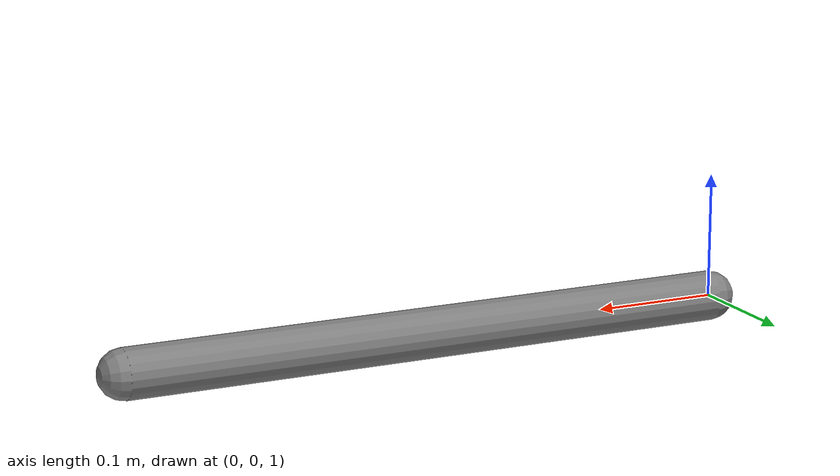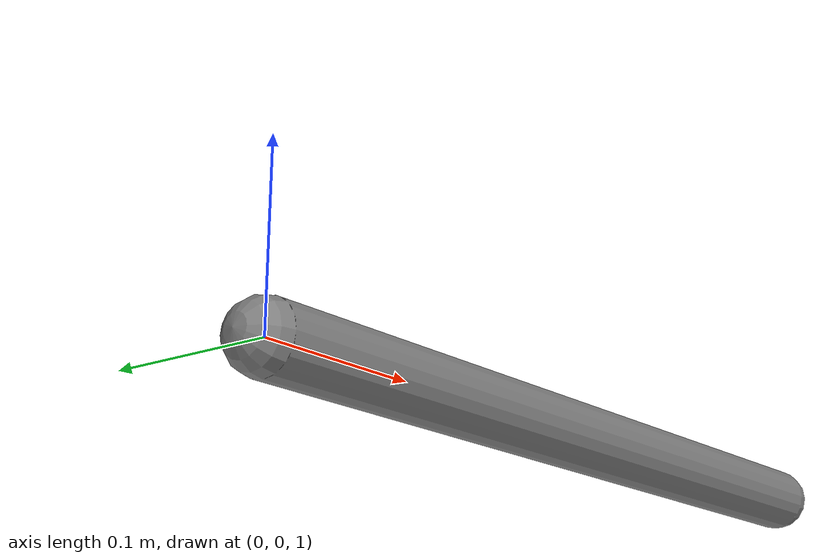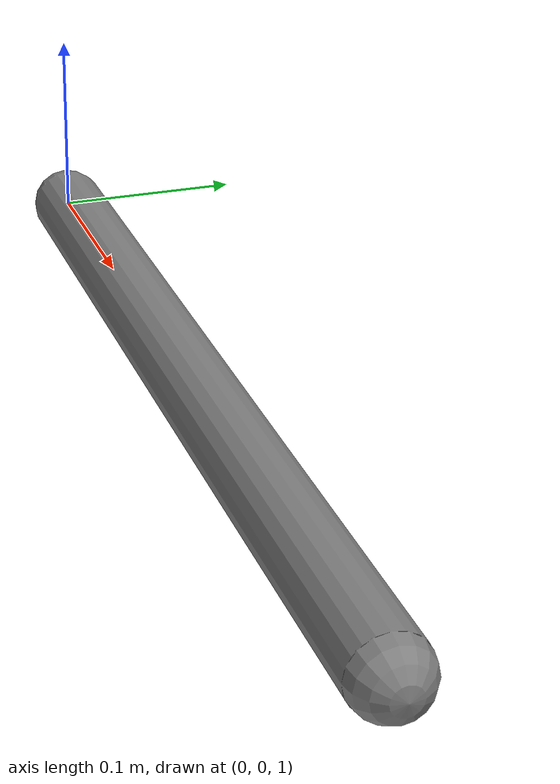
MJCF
<mujoco model="actuator-gear">
  <option gravity="0 0 -9.81" timestep="0.001"/>
  <compiler angle="radian"/>
  <worldbody>
    <body name="arm" pos="0 0 1">
      <joint name="hinge" type="hinge" axis="0 1 0" damping="0.5"/>
      <geom type="capsule" size="0.02" fromto="0 0 0 0.5 0 0" mass="1.0"/>
    </body>
  </worldbody>
  <actuator>
    <position name="motor" joint="hinge" kp="100" gear="2"/>
  </actuator>
  <sensor>
    <actuatorpos name="act_pos" actuator="motor"/>
    <actuatorvel name="act_vel" actuator="motor"/>
    <jointpos name="jnt_pos" joint="hinge"/>
    <jointvel name="jnt_vel" joint="hinge"/>
  </sensor>
</mujoco>
